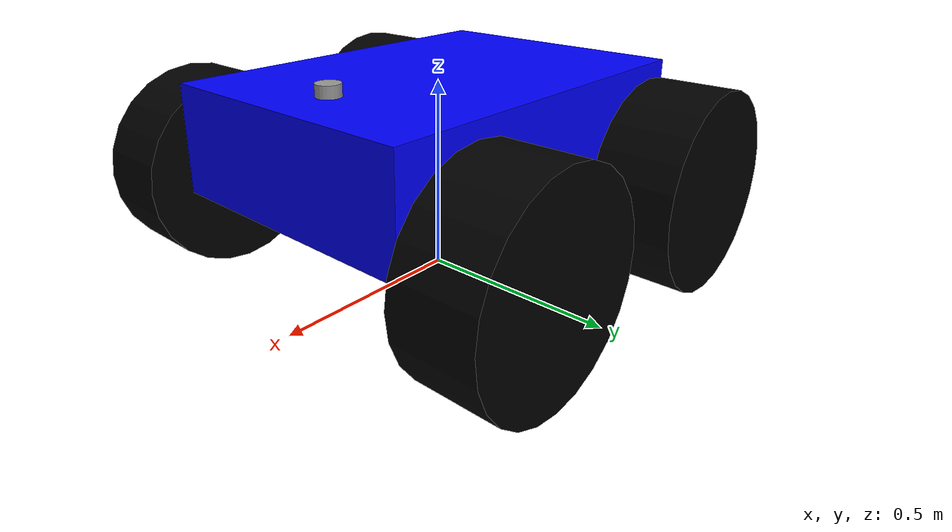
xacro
<?xml version="1.0"?>
<robot name="robot" xmlns:xacro="http://ros.org/wiki/xacro">

  <!-- ========== ARGUMENTO DE PREFIJO ========== -->

  <!-- ========== VARIABLES GENERALES ========== -->
  <xacro:property name="package_name"        value="robot_tesis_cuerpo"/>
  <xacro:property name="PI"                  value="3.14159265"/>

  <!-- chasis -->
  <xacro:property name="largoBase"           value="1.0"/>
  <xacro:property name="anchoBase"           value="0.70"/>
  <xacro:property name="altoBase"            value="0.27"/>
  <xacro:property name="masaBase"            value="10"/> <!-- 17, porque vamos a considerar +7 por el sistema de limpieza -->

  <!-- ruedas -->
  <xacro:property name="radioRueda"          value="0.25"/>
  <xacro:property name="anchoRueda"          value="0.20"/>

  <!-- ejes -->
  <xacro:property name="distEjeX"            value="0.33"/>
  <xacro:property name="distEjeY"            value="0.50"/>

  <!-- LiDAR -->
  <xacro:property name="radioLidar"          value="0.03"/>
  <xacro:property name="altoLidar"           value="0.03"/>

  <!-- frame base_footprint al suelo -->
  <xacro:property name="distSuelo"           value="0.26"/>

  <!-- incluir parte de Gazebo -->
  <xacro:include filename="$(find ${package_name})/urdf/robot_gz.xacro"/>

  <!-- ========== BASE FOOTPRINT & BASE LINK ========== -->
  <link name="base_footprint"/>

  <link name="base_link">
    <visual>
      <origin xyz="0 0 0.13" rpy="0 0 0"/>
      <geometry><box size="${largoBase} ${anchoBase} ${altoBase}"/></geometry>
      <material name="Blue"><color rgba="0 0 1 1"/></material>
    </visual>
    <collision>
      <origin xyz="0 0 0.13"/>
      <geometry><box size="${largoBase} ${anchoBase} ${altoBase}"/></geometry>
    </collision>
    <inertial>
      <origin xyz="0 0 0.13"/>
      <mass value="${masaBase}"/>
      <inertia ixx="${masaBase*(anchoBase*anchoBase + altoBase*altoBase)/12}"
               iyy="${masaBase*(largoBase*largoBase + altoBase*altoBase)/12}"
               izz="${masaBase*(largoBase*largoBase + anchoBase*anchoBase)/12}"
               ixy="0" ixz="0" iyz="0"/>
    </inertial>
  </link>

  <joint name="base_joint" type="fixed">
    <parent link="base_footprint"/>
    <child  link="base_link"/>
    <origin xyz="0 0 ${distSuelo}" rpy="0 0 0"/>
  </joint>

  <!-- ========== MACRO PARA RUEDAS ========== -->
  <xacro:macro name="rueda" params="x y suffix">
    <link name="${suffix}_link">
      <visual>
        <origin xyz="0 0 0" rpy="${PI/2} 0 0"/>
        <geometry><cylinder radius="${radioRueda}" length="${anchoRueda}"/></geometry>
        <material name="Black"><color rgba="0 0 0 1"/></material>
      </visual>
      <collision>
        <origin xyz="0 0 0" rpy="${PI/2} 0 0"/>
        <geometry><cylinder radius="${radioRueda}" length="${anchoRueda}"/></geometry>
      </collision>
      <inertial>
        <origin xyz="0 0 0"/>
        <mass value="2.7"/>
        <inertia ixx="${2.7*(3*radioRueda*radioRueda + anchoRueda*anchoRueda)/12}"
                 iyy="${0.5*2.7*radioRueda*radioRueda}"
                 izz="${2.7*(3*radioRueda*radioRueda + anchoRueda*anchoRueda)/12}"
                 ixy="0" ixz="0" iyz="0"/>
      </inertial>
    </link>

    <joint name="${suffix}_joint" type="continuous">
      <parent link="base_link"/>
      <child  link="${suffix}_link"/>
      <origin xyz="${x} ${y} 0" rpy="0 0 0"/>
      <axis xyz="0 1 0"/>
    </joint>
  </xacro:macro>

  <!-- cuatro ruedas -->
  <xacro:rueda x="${ distEjeX}" y="${ -distEjeY}" suffix="rueda_derecha_delantera"/>
  <xacro:rueda x="${-distEjeX}" y="${ -distEjeY}" suffix="rueda_derecha_trasera"/>
  <xacro:rueda x="${ distEjeX}" y="${distEjeY}" suffix="rueda_izquierda_delantera"/>
  <xacro:rueda x="${-distEjeX}" y="${distEjeY}" suffix="rueda_izquierda_trasera"/>

  <!-- ========== LIDAR ========== -->
  <link name="lidar_link">
    <visual>
      <origin xyz="0 0 0" rpy="0 0 0"/>
      <geometry><cylinder radius="${radioLidar}" length="${altoLidar}"/></geometry>
      <material name="Grey"><color rgba="0.6 0.6 0.6 1"/></material>
    </visual>
  </link>

  <joint name="lidar_joint" type="fixed">
    <parent link="base_link"/>
    <child  link="lidar_link"/>
    <origin xyz="0.35 0 0.28" rpy="0 0 0"/>
  </joint>

</robot>
